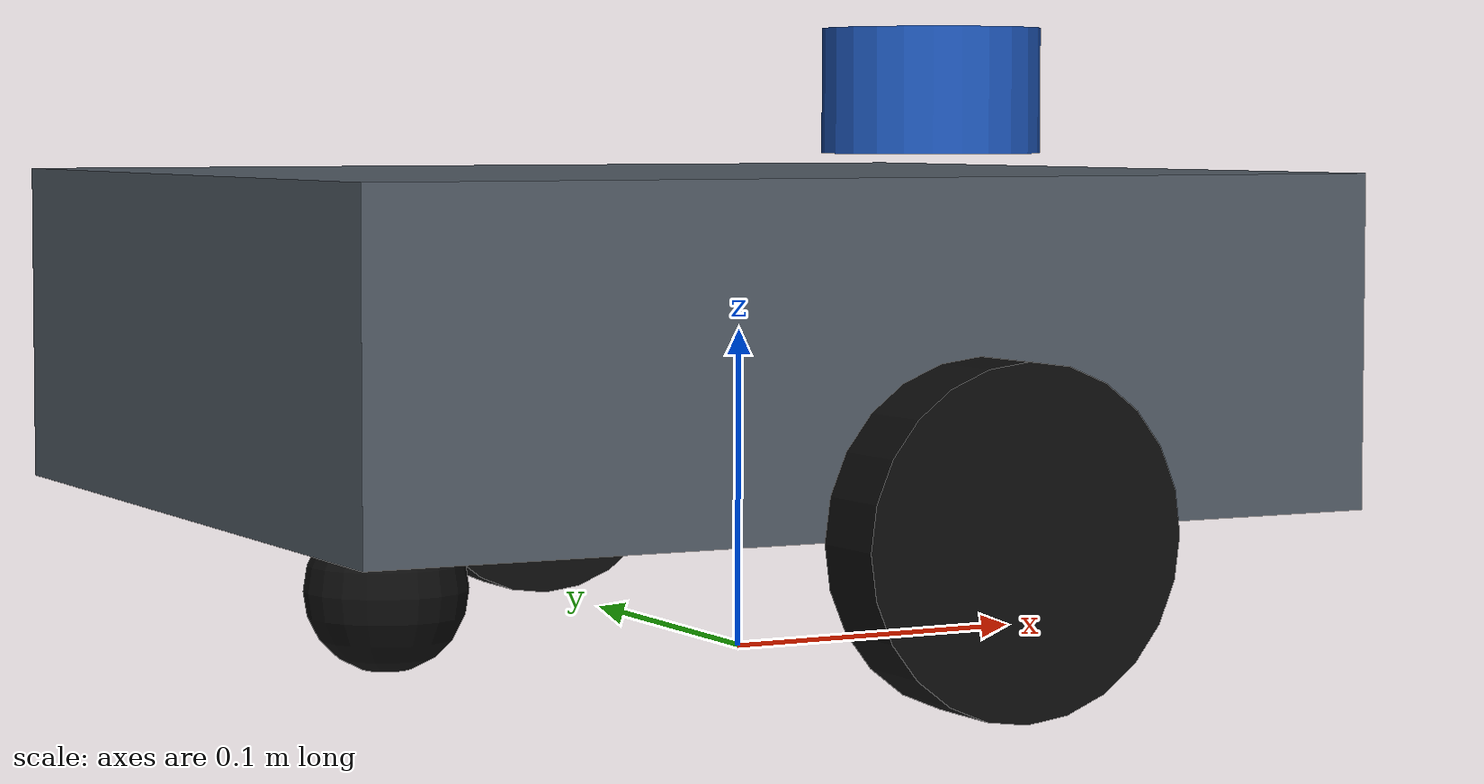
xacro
<?xml version="1.0"?>
<robot xmlns:xacro="http://www.ros.org/wiki/xacro" name="ar01">

  <xacro:include filename="ar01_base.xacro"/>
  <xacro:include filename="ar01_sensors.xacro"/>
  <xacro:include filename="ar01_ros2_control.xacro"/>

  <xacro:arg name="use_sim" default="false"/>
  <xacro:arg name="controller_config" default=""/>

  <xacro:ar01_base/>
  <xacro:ar01_sensors use_sim="$(arg use_sim)"/>

  <xacro:if value="$(arg use_sim)">
    <xacro:ar01_ros2_control controller_config="$(arg controller_config)"/>
  </xacro:if>
</robot>

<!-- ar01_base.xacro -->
<robot xmlns:xacro="http://www.ros.org/wiki/xacro">
  <xacro:macro name="ar01_base">
    <!-- Mechanical contract: chassis 320 x 280 x 100 mm. -->
    <xacro:property name="body_length" value="0.320"/>
    <xacro:property name="body_width" value="0.280"/>
    <xacro:property name="body_height" value="0.100"/>
    <xacro:property name="body_mass" value="2.530"/>

    <!--
      Wheel centres are 310 mm apart: 280 mm body + 25 mm wheel +
      2 x 2.5 mm clearance.
    -->
    <xacro:property name="wheel_radius" value="0.050"/>
    <xacro:property name="wheel_width" value="0.025"/>
    <xacro:property name="wheel_clearance" value="0.0025"/>
    <xacro:property
      name="wheel_track"
      value="${body_width + wheel_width + 2.0 * wheel_clearance}"/>
    <xacro:property name="wheel_mass" value="0.150"/>

    <xacro:property name="caster_radius" value="0.025"/>
    <xacro:property name="caster_mass" value="0.050"/>

    <!-- Component masses add up to the 3.000 kg P0 baseline. -->

    <material name="body_gray">
      <color rgba="0.32 0.36 0.40 1.0"/>
    </material>
    <material name="wheel_black">
      <color rgba="0.05 0.05 0.05 1.0"/>
    </material>

    <!-- Virtual ground projection: deliberately has no geometry or inertia. -->
    <link name="base_footprint"/>

    <link name="base_link">
      <visual>
        <origin xyz="-0.025 0 0" rpy="0 0 0"/>
        <geometry>
          <box size="${body_length} ${body_width} ${body_height}"/>
        </geometry>
        <material name="body_gray"/>
      </visual>
      <collision>
        <origin xyz="-0.025 0 0" rpy="0 0 0"/>
        <geometry>
          <box size="${body_length} ${body_width} ${body_height}"/>
        </geometry>
      </collision>
      <inertial>
        <!-- The drive axle is 25 mm forward of the chassis centre. -->
        <origin xyz="-0.025 0 0" rpy="0 0 0"/>
        <mass value="${body_mass}"/>
        <!-- Solid box inertia about its centre. -->
        <inertia
          ixx="${body_mass / 12.0 * (body_width * body_width + body_height * body_height)}"
          ixy="0.0"
          ixz="0.0"
          iyy="${body_mass / 12.0 * (body_length * body_length + body_height * body_height)}"
          iyz="0.0"
          izz="${body_mass / 12.0 * (body_length * body_length + body_width * body_width)}"/>
      </inertial>
    </link>

    <!-- base_link is at the drive axle; wheel centres are 50 mm above floor. -->
    <joint name="base_footprint_joint" type="fixed">
      <parent link="base_footprint"/>
      <child link="base_link"/>
      <origin xyz="0 0 0.100" rpy="0 0 0"/>
    </joint>

    <xacro:macro name="wheel" params="side y">
      <link name="${side}_wheel_link">
        <visual>
          <!-- A URDF cylinder is Z-aligned; rotate its axis onto Y. -->
          <origin xyz="0 0 0" rpy="${pi / 2.0} 0 0"/>
          <geometry>
            <cylinder radius="${wheel_radius}" length="${wheel_width}"/>
          </geometry>
          <material name="wheel_black"/>
        </visual>
        <collision>
          <origin xyz="0 0 0" rpy="${pi / 2.0} 0 0"/>
          <geometry>
            <cylinder radius="${wheel_radius}" length="${wheel_width}"/>
          </geometry>
        </collision>
        <inertial>
          <origin xyz="0 0 0" rpy="0 0 0"/>
          <mass value="${wheel_mass}"/>
          <!-- Solid cylinder with its rotation axis along Y. -->
          <inertia
            ixx="${wheel_mass / 12.0 * (3.0 * wheel_radius * wheel_radius + wheel_width * wheel_width)}"
            ixy="0.0"
            ixz="0.0"
            iyy="${wheel_mass / 2.0 * wheel_radius * wheel_radius}"
            iyz="0.0"
            izz="${wheel_mass / 12.0 * (3.0 * wheel_radius * wheel_radius + wheel_width * wheel_width)}"/>
        </inertial>
      </link>

      <joint name="${side}_wheel_joint" type="continuous">
        <parent link="base_link"/>
        <child link="${side}_wheel_link"/>
        <origin xyz="0 ${y} -0.050" rpy="0 0 0"/>
        <axis xyz="0 1 0"/>
        <limit effort="20.0" velocity="20.0"/>
        <dynamics damping="0.1" friction="0.0"/>
      </joint>
    </xacro:macro>

    <!-- ROS convention: left is +Y and right is -Y. -->
    <xacro:wheel side="left" y="${wheel_track / 2.0}"/>
    <xacro:wheel side="right" y="${-wheel_track / 2.0}"/>

    <link name="caster_link">
      <visual>
        <geometry>
          <sphere radius="${caster_radius}"/>
        </geometry>
        <material name="wheel_black"/>
      </visual>
      <collision>
        <geometry>
          <sphere radius="${caster_radius}"/>
        </geometry>
      </collision>
      <inertial>
        <origin xyz="0 0 0" rpy="0 0 0"/>
        <mass value="${caster_mass}"/>
        <!-- Solid sphere inertia about its centre. -->
        <inertia
          ixx="${2.0 / 5.0 * caster_mass * caster_radius * caster_radius}"
          ixy="0.0"
          ixz="0.0"
          iyy="${2.0 / 5.0 * caster_mass * caster_radius * caster_radius}"
          iyz="0.0"
          izz="${2.0 / 5.0 * caster_mass * caster_radius * caster_radius}"/>
      </inertial>
    </link>

    <joint name="caster_joint" type="fixed">
      <parent link="base_link"/>
      <child link="caster_link"/>
      <origin xyz="-0.120 0 -0.075" rpy="0 0 0"/>
    </joint>

    <!-- Contact parameters for the future Gazebo rigid-body simulation. -->
    <gazebo reference="left_wheel_link">
      <mu1>1.0</mu1>
      <mu2>1.0</mu2>
    </gazebo>
    <gazebo reference="right_wheel_link">
      <mu1>1.0</mu1>
      <mu2>1.0</mu2>
    </gazebo>
    <gazebo reference="caster_link">
      <mu1>0.001</mu1>
      <mu2>0.001</mu2>
    </gazebo>
  </xacro:macro>
</robot>

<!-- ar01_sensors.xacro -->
<robot xmlns:xacro="http://www.ros.org/wiki/xacro">
  <xacro:macro name="ar01_sensors" params="use_sim">
    <!-- Sensor geometry is shared by the physical model and the Gazebo plugins. -->
    <xacro:property name="lidar_radius" value="0.035"/>
    <xacro:property name="lidar_height" value="0.040"/>
    <xacro:property name="lidar_mass" value="0.100"/>

    <xacro:property name="imu_length" value="0.040"/>
    <xacro:property name="imu_width" value="0.030"/>
    <xacro:property name="imu_height" value="0.015"/>
    <xacro:property name="imu_mass" value="0.020"/>

    <material name="sensor_blue">
      <color rgba="0.12 0.35 0.75 1.0"/>
    </material>
    <material name="sensor_orange">
      <color rgba="0.95 0.45 0.08 1.0"/>
    </material>

    <link name="lidar_link">
      <visual>
        <geometry>
          <cylinder radius="${lidar_radius}" length="${lidar_height}"/>
        </geometry>
        <material name="sensor_blue"/>
      </visual>
      <collision>
        <geometry>
          <cylinder radius="${lidar_radius}" length="${lidar_height}"/>
        </geometry>
      </collision>
      <inertial>
        <origin xyz="0 0 0" rpy="0 0 0"/>
        <mass value="${lidar_mass}"/>
        <!-- Solid cylinder with its rotation axis along Z. -->
        <inertia
          ixx="${lidar_mass / 12.0 * (3.0 * lidar_radius * lidar_radius + lidar_height * lidar_height)}"
          ixy="0.0"
          ixz="0.0"
          iyy="${lidar_mass / 12.0 * (3.0 * lidar_radius * lidar_radius + lidar_height * lidar_height)}"
          iyz="0.0"
          izz="${lidar_mass / 2.0 * lidar_radius * lidar_radius}"/>
      </inertial>
    </link>

    <joint name="lidar_joint" type="fixed">
      <parent link="base_link"/>
      <child link="lidar_link"/>
      <origin xyz="0.070 0 0.075" rpy="0 0 0"/>
    </joint>

    <link name="imu_link">
      <visual>
        <geometry>
          <box size="${imu_length} ${imu_width} ${imu_height}"/>
        </geometry>
        <material name="sensor_orange"/>
      </visual>
      <collision>
        <geometry>
          <box size="${imu_length} ${imu_width} ${imu_height}"/>
        </geometry>
      </collision>
      <inertial>
        <origin xyz="0 0 0" rpy="0 0 0"/>
        <mass value="${imu_mass}"/>
        <!-- Solid box inertia about its centre. -->
        <inertia
          ixx="${imu_mass / 12.0 * (imu_width * imu_width + imu_height * imu_height)}"
          ixy="0.0"
          ixz="0.0"
          iyy="${imu_mass / 12.0 * (imu_length * imu_length + imu_height * imu_height)}"
          iyz="0.0"
          izz="${imu_mass / 12.0 * (imu_length * imu_length + imu_width * imu_width)}"/>
      </inertial>
    </link>

    <joint name="imu_joint" type="fixed">
      <parent link="base_link"/>
      <child link="imu_link"/>
      <origin xyz="-0.025 0 0" rpy="0 0 0"/>
    </joint>

    <xacro:if value="${use_sim}">
      <gazebo reference="lidar_link">
        <sensor name="gpu_lidar" type="gpu_lidar">
          <topic>/scan</topic>
          <update_rate>10</update_rate>
          <always_on>true</always_on>
          <visualize>true</visualize>
          <lidar>
            <scan>
              <horizontal>
                <samples>720</samples>
                <resolution>1</resolution>
                <min_angle>${-pi}</min_angle>
                <max_angle>${pi}</max_angle>
              </horizontal>
              <vertical>
                <samples>1</samples>
                <resolution>1</resolution>
                <min_angle>0.0</min_angle>
                <max_angle>0.0</max_angle>
              </vertical>
            </scan>
            <range>
              <min>0.10</min>
              <max>12.0</max>
              <resolution>0.01</resolution>
            </range>
          </lidar>
        </sensor>
      </gazebo>

      <gazebo reference="imu_link">
        <sensor name="imu_sensor" type="imu">
          <topic>/imu/data</topic>
          <update_rate>100</update_rate>
          <always_on>true</always_on>
          <visualize>false</visualize>
        </sensor>
      </gazebo>
    </xacro:if>
  </xacro:macro>
</robot>
